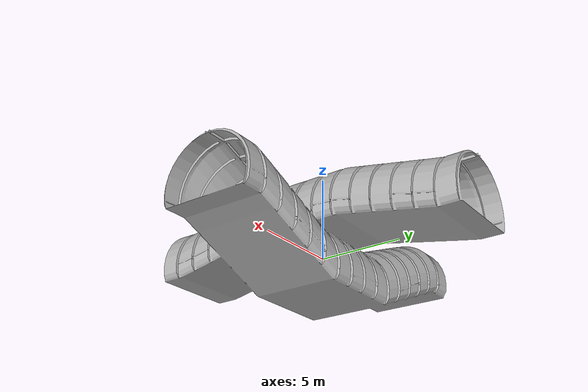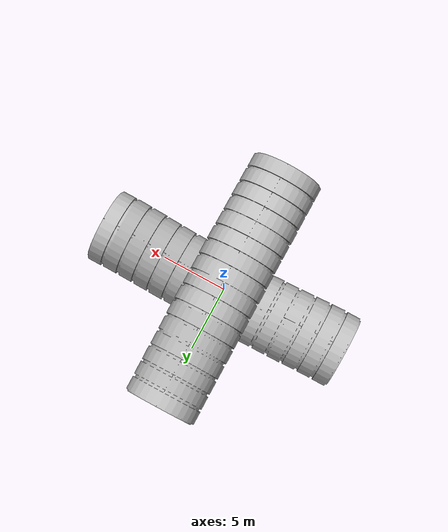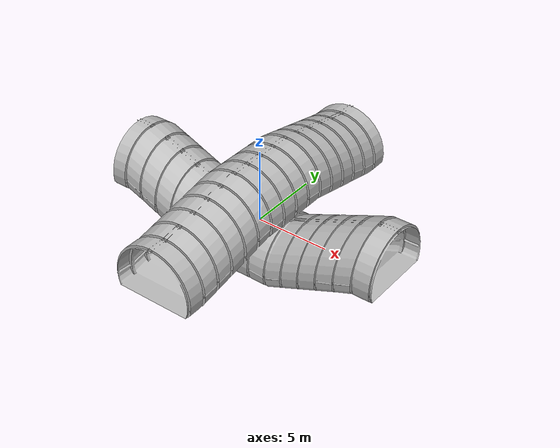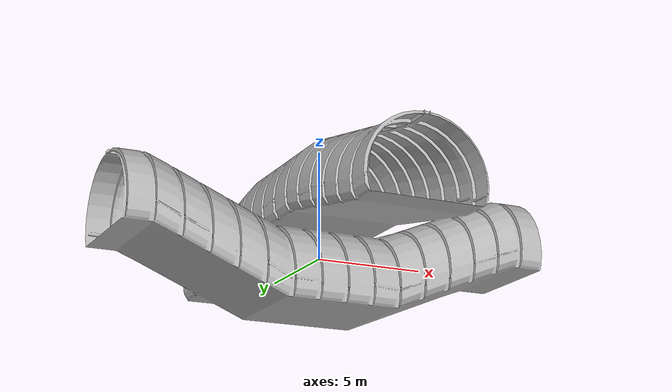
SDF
<?xml version="1.0" ?>
<sdf version="1.6">
  <model name="tunnel_tile_4">
    <static>true</static>
    <link name="link">
      <pose>0 0 0 0 0 0</pose>
      <collision name="collision">
        <geometry>
          <mesh>
            <uri>model://tunnel_tile_4/meshes/tunnel_tile_4.dae</uri>
          </mesh>
        </geometry>
      </collision>

      <visual name="visual">
        <geometry>
          <mesh>
            <uri>model://tunnel_tile_4/meshes/tunnel_tile_4.dae</uri>
          </mesh>
        </geometry>
      </visual>
    </link>
  </model>
</sdf>
